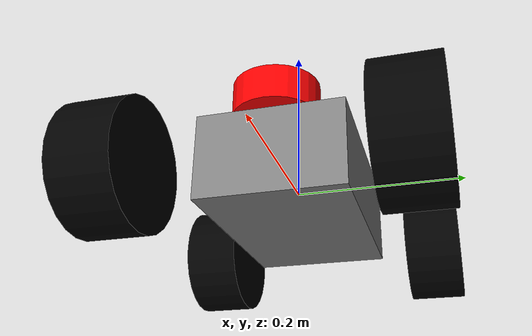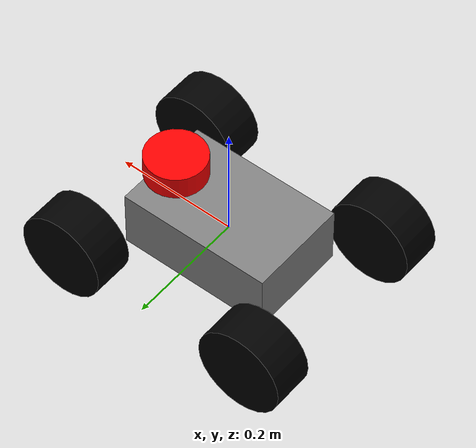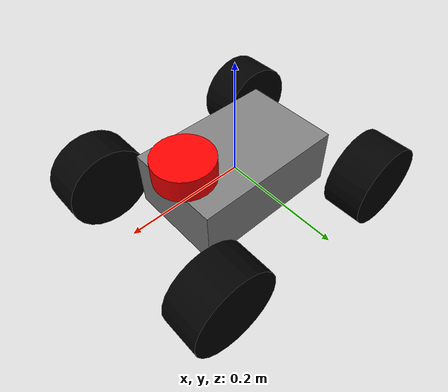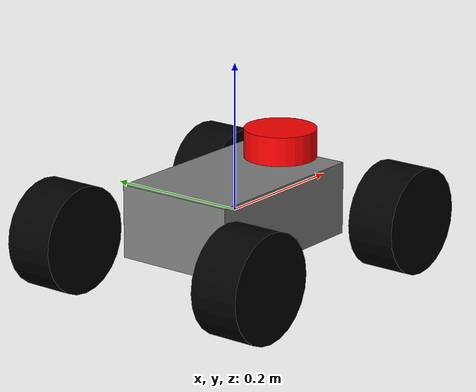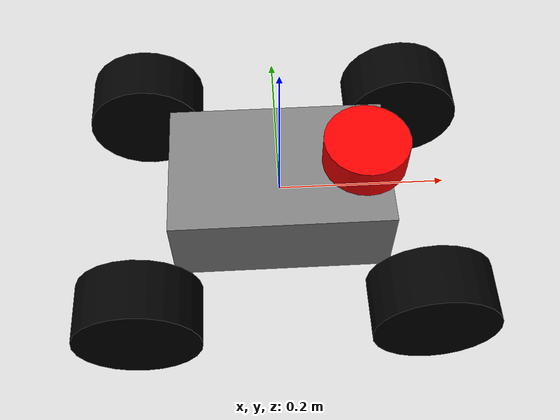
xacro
<?xml version="1.0"?>
<robot name="primeberry" xmlns:xacro="http://www.ros.org/wiki/xacro">
  <xacro:include filename="lidar.xacro"/>
  <xacro:include filename="properties.xacro"/>
  <xacro:include filename="macros.xacro"/>
  <xacro:include filename="materials.xacro"/>

  <link name="base_footprint">
  </link>
  <joint name="base_footprint_joint" type="fixed">
      <origin xyz="0 0 0" rpy="0 0 0"/>
    <parent link="base_link"/>
    <child link="base_footprint"/>
  </joint>
  <!-- base_link must have geometry so that its axes can be displayed in
       rviz. -->
  <link name="base_link">
    <visual>
      <geometry>
        <box size="0.01 0.01 0.01"/>
      </geometry>
      <material name="chassis_mat"/>
    </visual>
  </link>
  <gazebo reference="base_link">
    <material>Gazebo/Grey</material>
  </gazebo>

  <!-- Chassis -->
  <link name="chassis">
    <visual>
      <geometry>
        <box size="${chassis_length} ${chassis_width} ${chassis_height}"/>
      </geometry>
      <material name="chassis_mat"/>
    </visual>

    <collision>
      <geometry>
        <box size="${chassis_length} ${chassis_width} ${chassis_height}"/>
      </geometry>
    </collision>

    <xacro:solid_cuboid_inertial
        width="${chassis_length}" depth="${chassis_width}"
        height="${chassis_height}" mass="${chassis_mass}">
      <origin xyz="0 0 0"/>
    </xacro:solid_cuboid_inertial>
  </link>
  <gazebo reference="chassis">
    <material>Gazebo/Grey</material>
  </gazebo>

  <joint name="base_link_to_chassis" type="fixed">
      <origin xyz="0.0 0.0 0.0"/>
    <parent link="base_link"/>
    <child link="chassis"/>
  </joint>

  <!-- Wheels -->
  <xacro:front_wheel lr_prefix="left" fr_prefix="front"
                     lr_reflect="1" fr_reflect="1"/>
  <xacro:front_wheel lr_prefix="right" fr_prefix="front"
                     lr_reflect="-1" fr_reflect="1"/>
  <xacro:rear_wheel lr_prefix="left" fr_prefix="rear"
                    lr_reflect="1" fr_reflect="-1"/>
  <xacro:rear_wheel lr_prefix="right" fr_prefix="rear"
                    lr_reflect="-1" fr_reflect="-1"/>
</robot>

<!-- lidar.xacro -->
<robot xmlns:xacro="http://www.ros.org/wiki/xacro" >

     <xacro:macro name="inertial_cylinder" params="mass length radius *origin">
        <inertial>
            <xacro:insert_block name="origin"/>
            <mass value="${mass}" />
            <inertia ixx="${(1/12) * mass * (3*radius*radius + length*length)}" ixy="0.0" ixz="0.0"
                    iyy="${(1/12) * mass * (3*radius*radius + length*length)}" iyz="0.0"
                    izz="${(1/2) * mass * (radius*radius)}" />
        </inertial>
    </xacro:macro>

    <joint name="laser_joint" type="fixed">
        <parent link="chassis"/>
        <child link="laser"/>
        <origin xyz="0.1 0 0.07" rpy="0 0 0"/>
    </joint>

    <link name="laser">
        <visual>
            <geometry>
                <cylinder radius="0.05" length="0.04"/>
            </geometry>
            <material name="red"/>
        </visual>
        <collision>
            <geometry>
                <cylinder radius="0.05" length="0.04"/>
            </geometry>
        </collision>
        <xacro:inertial_cylinder mass="0.1" length="0.04" radius="0.05">
            <origin xyz="0 0 0" rpy="0 0 0"/>
        </xacro:inertial_cylinder>
    </link>

    <gazebo reference="laser">
        <material>Gazebo/Red</material>

        <sensor name="laser" type="ray">
            <pose> 0 0 0 0 0 0 </pose>
            <visualize>true</visualize>
            <update_rate>10</update_rate>
            <ray>
                <scan>
                    <horizontal>
                        <samples>360</samples>
                        <min_angle>-3.14</min_angle>
                        <max_angle>3.14</max_angle>
                    </horizontal>
                </scan>
                <range>
                    <min>0.3</min>
                    <max>12</max>
                </range>
            </ray>
            <plugin name="laser_controller" filename="libgazebo_ros_ray_sensor.so">
                <ros>
                    <argument>~/out:=scan</argument>
                </ros>
                <output_type>sensor_msgs/LaserScan</output_type>
                <frame_name>laser</frame_name>
            </plugin>
        </sensor>
    </gazebo>

</robot>

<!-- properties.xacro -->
<robot xmlns:xacro="http://www.ros.org/wiki/xacro">
    <!-- Degree-to-radian conversions -->
  <xacro:property name="degrees_45" value="0.785398163"/>
  <xacro:property name="degrees_90" value="1.57079633"/>

  <!-- chassis_length is measured along the x axis, chassis_width
       along the y axis, and chassis_height along the z axis. -->
  <xacro:property name="chassis_length" value="0.258"/>
  <xacro:property name="chassis_width" value="0.168"/>
  <xacro:property name="chassis_height" value="0.1"/>
  <xacro:property name="chassis_mass" value="2.788"/>

  <xacro:property name="hub_dia" value="0.09652"/>
  <xacro:property name="tire_dia" value="0.14605"/>
  <xacro:property name="tire_width" value="0.0689"/>
  <xacro:property name="hex_hub_depth" value="0.01445"/>
  <xacro:property name="wheel_mass" value="0.59"/>

  <xacro:property name="wheelbase" value="0.335"/>
  <xacro:property name="hex_hub_dist" value="0.365"/>
  <xacro:property name="axle_length" value="0.03"/>
  <xacro:property name="wheel_travel" value="0.084"/>
  <xacro:property name="shock_z_offset" value="0.0655"/>

  <xacro:property name="shock_eff_limit" value="12.5106"/>
  <xacro:property name="shock_vel_limit" value="1000"/>

  <xacro:property name="axle_eff_limit" value="5.12766"/>
  <xacro:property name="axle_vel_limit" value="244.8696"/>

  <!-- These constants are used to simulate a Traxxas 2056 servo operated at
       6 V. servo_stall_torque is measured in N m. servo_no_load_speed is
       measured in rad/s. -->
  <xacro:property name="servo_stall_torque" value="0.5649"/>
  <xacro:property name="servo_no_load_speed" value="4.553"/>
</robot>

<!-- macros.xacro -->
<robot xmlns:xacro="http://www.ros.org/wiki/xacro" >
  <!-- Null inertial element. This is needed to make the model work with
       Gazebo. -->
  <xacro:macro name="null_inertial">
    <inertial>
      <mass value="0.001"/>
      <inertia ixx="0.001" ixy="0" ixz="0" iyy="0.001" iyz="0" izz="0.001"/>
    </inertial>
  </xacro:macro>

  <!-- Inertia of a solid cuboid. Width is measured along the x axis, depth
       along the y axis, and height along the z axis. -->
  <xacro:macro name="solid_cuboid_inertial"
               params="width depth height mass *origin">
    <inertial>
      <xacro:insert_block name="origin"/>
      <mass value="${mass}"/>
      <inertia ixx="${mass * (depth * depth + height * height) / 12}"
               ixy="0" ixz="0"
               iyy="${mass * (width * width + height * height) / 12}"
               iyz="0"
               izz="${mass * (width * width + depth * depth) / 12}"/>
    </inertial>
  </xacro:macro>

  <xacro:macro name="thick_walled_tube_inertial"
               params="inner_rad outer_rad height mass">
    <inertial>
      <mass value="${mass}"/>
      <inertia ixx="${(1 / 12) * mass * (3 * (inner_rad * inner_rad +
                    outer_rad * outer_rad) + height * height)}"
               ixy="0" ixz="0"
               iyy="${(1 / 12) * mass * (3 * (inner_rad * inner_rad +
                    outer_rad * outer_rad) + height * height)}"
               iyz="0"
               izz="${mass * (inner_rad * inner_rad +
                    outer_rad * outer_rad) / 2}"/>
    </inertial>
  </xacro:macro>

  <!-- Shock absorber -->
  <xacro:macro name="shock"
               params="lr_prefix fr_prefix lr_reflect fr_reflect child">
    <joint name="${lr_prefix}_${fr_prefix}_shock" type="fixed">
      <parent link="chassis"/>
      <child link="${child}"/>

      <origin xyz="${fr_reflect * wheelbase / 2}
                   ${lr_reflect * ((hex_hub_dist / 2) - axle_length)}
                   ${(wheel_travel / 2) - shock_z_offset}"/>
      <axis xyz="0 0 -1"/>
    </joint>

    <gazebo reference="${lr_prefix}_${fr_prefix}_shock">
      <material>Gazebo/Yellow</material>
    </gazebo>
  </xacro:macro>

  <!-- The "wheel" macro defines an axle carrier, axle, and wheel. -->
  <xacro:macro name="wheel" params="lr_prefix fr_prefix lr_reflect">
    <link name="${lr_prefix}_${fr_prefix}_axle_carrier">
      <xacro:null_inertial/>
    </link>

    <!-- The left and right axles have the same axis so that identical
         rotation values cause the wheels to rotate in the same direction. -->
    <joint name="${lr_prefix}_${fr_prefix}_axle" type="continuous">
      <parent link="${lr_prefix}_${fr_prefix}_axle_carrier"/>
      <child link="${lr_prefix}_${fr_prefix}_wheel"/>
      <origin xyz="0 0 0" rpy="${degrees_90} 0 0"/>
      <axis xyz="0 0 -1"/>
      <limit effort="${axle_eff_limit}" velocity="${axle_vel_limit}"/>
    </joint>

    <link name="${lr_prefix}_${fr_prefix}_wheel">
      <visual>
        <origin xyz="0
                     0
                     0"/>
        <geometry>
          <cylinder radius="${tire_dia / 2}" length="${tire_width}"/>
        </geometry>
        <material name="tire_mat"/>
      </visual>

      <collision>
        <origin xyz="0
                     0
                     0"/>
        <geometry>
          <cylinder radius="${tire_dia / 2}" length="${tire_width}"/>
        </geometry>
      </collision>

      <xacro:thick_walled_tube_inertial
          inner_rad="${hub_dia / 2}" outer_rad="${tire_dia / 2}"
          height="${tire_width}" mass="${wheel_mass}"/>
    </link>

    <gazebo reference="${lr_prefix}_${fr_prefix}_wheel">
      <material>Gazebo/Black</material>
    </gazebo>
  </xacro:macro>

  <!-- Front wheel -->
  <xacro:macro name="front_wheel"
               params="lr_prefix fr_prefix lr_reflect fr_reflect">
    <xacro:shock lr_prefix="${lr_prefix}" fr_prefix="${fr_prefix}"
                 lr_reflect="${lr_reflect}" fr_reflect="${fr_reflect}"
                 child="${lr_prefix}_steering_link"/>

    <link name="${lr_prefix}_steering_link">
      <xacro:null_inertial/>
    </link>

    <joint name="${lr_prefix}_steering_joint" type="revolute">
      <parent link="${lr_prefix}_steering_link"/>
      <child link="${lr_prefix}_${fr_prefix}_axle_carrier"/>
      <axis xyz="0 0 1"/>
      <limit lower="${-degrees_45}" upper="${degrees_45}"
             effort="${servo_stall_torque}" velocity="${servo_no_load_speed}"/>
    </joint>

    <xacro:wheel lr_prefix="${lr_prefix}" fr_prefix="${fr_prefix}"
                 lr_reflect="${lr_reflect}"/>
  </xacro:macro>

  <!-- Rear wheel -->
  <xacro:macro name="rear_wheel"
               params="lr_prefix fr_prefix lr_reflect fr_reflect">
    <xacro:shock lr_prefix="${lr_prefix}" fr_prefix="${fr_prefix}"
                 lr_reflect="${lr_reflect}" fr_reflect="${fr_reflect}"
                 child="${lr_prefix}_${fr_prefix}_axle_carrier"/>
    <xacro:wheel lr_prefix="${lr_prefix}" fr_prefix="${fr_prefix}"
                 lr_reflect="${lr_reflect}"/>
  </xacro:macro>

</robot>

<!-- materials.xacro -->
<robot xmlns:xacro="http://www.ros.org/wiki/xacro">

    <!-- Define the materials used in the URDF -->
    <material name="blue">
        <color rgba="0 0 1 1"/>
    </material>

    <material name="grey">
        <color rgba="0.5 0.5 0.5 1"/>
    </material>

    <material name="red">
        <color rgba="1 0 0 1"/>
    </material>

    <material name="battery_mat">
        <color rgba="0 0 1 1"/>
    </material>

    <material name="chassis_mat">
        <color rgba="0.5 0.5 0.5 1"/>
    </material>

    <material name="tire_mat">
        <color rgba="0 0 0 1"/>
    </material>

    <!-- Gazebo tags for each link -->
    <gazebo reference="base_link">
        <material>Gazebo/DarkGrey</material>
    </gazebo>
    <gazebo reference="left_steering_link">
        <material>Gazebo/Grey</material>
    </gazebo>
    <gazebo reference="right_steering_link">
        <material>Gazebo/Grey</material>
    </gazebo>
    <gazebo reference="left_front_wheel">
        <material>Gazebo/Black</material>
    </gazebo>
    <gazebo reference="right_front_wheel">
        <material>Gazebo/Black</material>
    </gazebo>
    <gazebo reference="left_rear_wheel">
        <material>Gazebo/Black</material>
    </gazebo>
    <gazebo reference="right_rear_wheel">
        <material>Gazebo/Black</material>
    </gazebo>
    <gazebo reference="front_steer">
        <material>Gazebo/Gold</material>
    </gazebo>
    <gazebo reference="rear_wheel">
        <material>Gazebo/Gold</material>
    </gazebo>

</robot>
